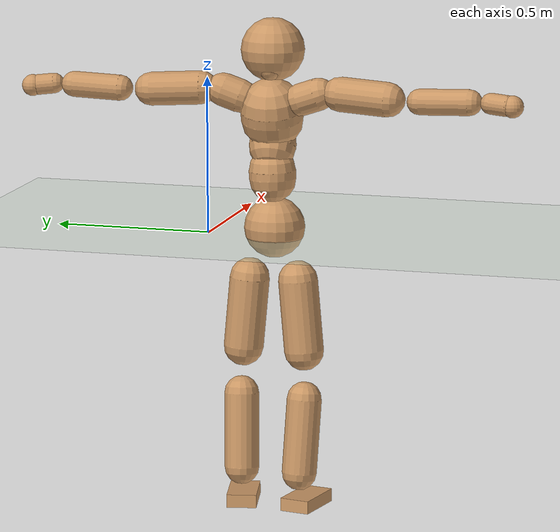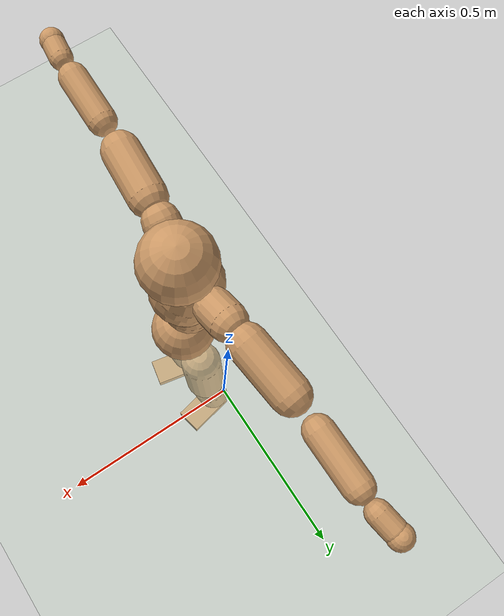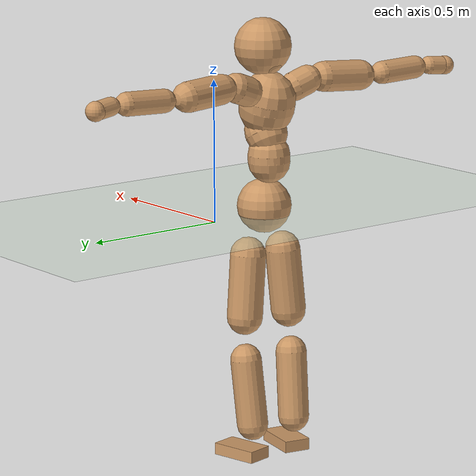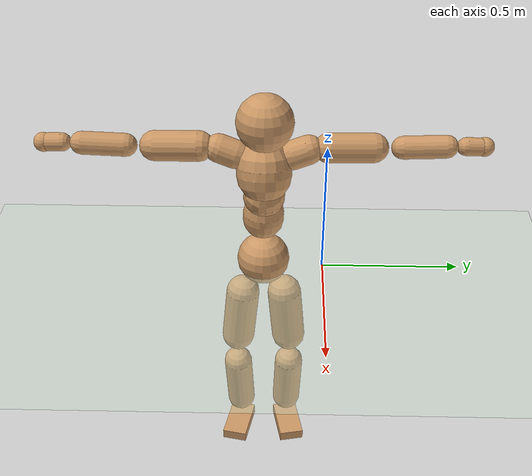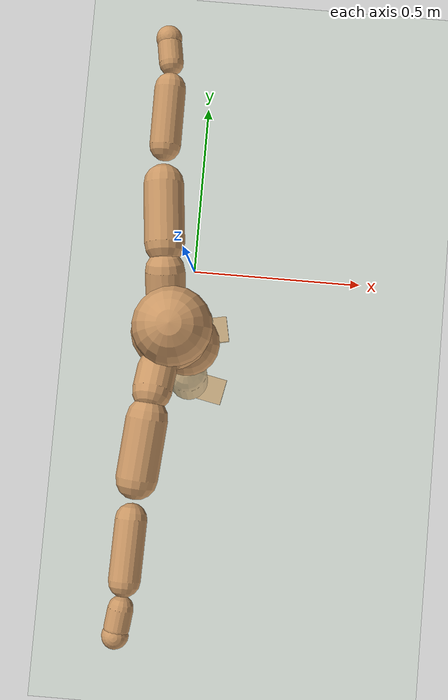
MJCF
<mujoco model="humanoid">
  <compiler coordinate="local"/>
  <default>
    <joint damping="0.0" armature="0.01" stiffness="0.0" limited="true"/>
    <geom conaffinity="1" condim="3" contype="7" margin="0.001" rgba="0.8 0.6 .4 1"/>
  </default>
  <asset>
    <texture type="skybox" builtin="gradient" rgb1=".4 .5 .6" rgb2="0 0 0" width="100" height="100"/>
    <texture builtin="flat" height="1278" mark="cross" markrgb="1 1 1" name="texgeom" random="0.01" rgb1="0.8 0.6 0.4" rgb2="0.8 0.6 0.4" type="cube" width="127"/>
    <texture builtin="checker" height="100" name="texplane" rgb1="0 0 0" rgb2="0.8 0.8 0.8" type="2d" width="100"/>
    <material name="MatPlane" reflectance="0.5" shininess="1" specular="1" texrepeat="60 60" texture="texplane"/>
    <material name="geom" texture="texgeom" texuniform="true"/>
  </asset>
  <worldbody>
    <light cutoff="100" diffuse="1 1 1" dir="-0 0 -1.3" directional="true" exponent="1" pos="0 0 1.3" specular=".1 .1 .1"/>
    <geom conaffinity="1" condim="3" name="floor" pos="0 0 0" rgba="0.8 0.9 0.8 1" size="100 100 .2" type="plane" material="MatPlane"/>
    <body name="Pelvis" pos="-0.0007 -0.2198 0.0309">
      <freejoint name="Pelvis"/>
      <geom type="sphere" contype="1" conaffinity="1" density="500" size="0.0966" pos="0.0000 0.0000 0.0000" name="Pelvis"/>
      <body name="L_Hip" pos="-0.0071 0.0734 -0.0919">
        <joint name="L_Hip_x" type="hinge" pos="0 0 0" axis="1 0 0" stiffness="800" damping="80" armature="0.02" range="-180.0000 180.0000"/>
        <joint name="L_Hip_y" type="hinge" pos="0 0 0" axis="0 1 0" stiffness="800" damping="80" armature="0.02" range="-180.0000 180.0000"/>
        <joint name="L_Hip_z" type="hinge" pos="0 0 0" axis="0 0 1" stiffness="800" damping="80" armature="0.02" range="-180.0000 180.0000"/>
        <geom type="capsule" contype="1" conaffinity="1" density="500" fromto="-0.0014 0.0063 -0.0740 -0.0057 0.0252 -0.2961" size="0.0637" name="L_Hip"/>
        <body name="L_Knee" pos="-0.0071 0.0315 -0.3702">
          <joint name="L_Knee_x" type="hinge" pos="0 0 0" axis="1 0 0" stiffness="800" damping="80" armature="0.02" range="-180.0000 180.0000"/>
          <joint name="L_Knee_y" type="hinge" pos="0 0 0" axis="0 1 0" stiffness="800" damping="80" armature="0.02" range="-180.0000 180.0000"/>
          <joint name="L_Knee_z" type="hinge" pos="0 0 0" axis="0 0 1" stiffness="800" damping="80" armature="0.02" range="-180.0000 180.0000"/>
          <geom type="capsule" contype="1" conaffinity="1" density="500" fromto="-0.0091 -0.0026 -0.0789 -0.0363 -0.0105 -0.3155" size="0.0554" name="L_Knee"/>
          <body name="L_Ankle" pos="-0.0454 -0.0132 -0.3944">
            <joint name="L_Ankle_x" type="hinge" pos="0 0 0" axis="1 0 0" stiffness="800" damping="80" armature="0.02" range="-180.0000 180.0000"/>
            <joint name="L_Ankle_y" type="hinge" pos="0 0 0" axis="0 1 0" stiffness="800" damping="80" armature="0.02" range="-180.0000 180.0000"/>
            <joint name="L_Ankle_z" type="hinge" pos="0 0 0" axis="0 0 1" stiffness="800" damping="80" armature="0.02" range="-180.0000 180.0000"/>
            <geom type="box" contype="1" conaffinity="1" density="500" pos="0.0597 0.0120 -0.0278" size="0.0858 0.0476 0.021" quat="0.9950 0.0000 0.0000 0.0994" name="L_Ankle"/>
            <body name="L_Toe" pos="0.1193 0.0241 -0.0557">
              <joint name="L_Toe_x" type="hinge" pos="0 0 0" axis="1 0 0" stiffness="500" damping="50" armature="0.02" range="-180.0000 180.0000"/>
              <joint name="L_Toe_y" type="hinge" pos="0 0 0" axis="0 1 0" stiffness="500" damping="50" armature="0.02" range="-180.0000 180.0000"/>
              <joint name="L_Toe_z" type="hinge" pos="0 0 0" axis="0 0 1" stiffness="500" damping="50" armature="0.02" range="-180.0000 180.0000"/>
              <geom type="box" contype="1" conaffinity="1" density="500" pos="0.0000 0.0000 0.0268" size="0.001 0.0024 0.001" quat="0.9944 0.0000 0.0000 0.1057" name="L_Toe"/>
            </body>
          </body>
        </body>
      </body>
      <body name="R_Hip" pos="-0.0042 -0.0712 -0.0911">
        <joint name="R_Hip_x" type="hinge" pos="0 0 0" axis="1 0 0" stiffness="800" damping="80" armature="0.02" range="-180.0000 180.0000"/>
        <joint name="R_Hip_y" type="hinge" pos="0 0 0" axis="0 1 0" stiffness="800" damping="80" armature="0.02" range="-180.0000 180.0000"/>
        <joint name="R_Hip_z" type="hinge" pos="0 0 0" axis="0 0 1" stiffness="800" damping="80" armature="0.02" range="-180.0000 180.0000"/>
        <geom type="capsule" contype="1" conaffinity="1" density="500" fromto="-0.0021 -0.0073 -0.0755 -0.0084 -0.0291 -0.3020" size="0.0629" name="R_Hip"/>
        <body name="R_Knee" pos="-0.0104 -0.0364 -0.3774">
          <joint name="R_Knee_x" type="hinge" pos="0 0 0" axis="1 0 0" stiffness="800" damping="80" armature="0.02" range="-180.0000 180.0000"/>
          <joint name="R_Knee_y" type="hinge" pos="0 0 0" axis="0 1 0" stiffness="800" damping="80" armature="0.02" range="-180.0000 180.0000"/>
          <joint name="R_Knee_z" type="hinge" pos="0 0 0" axis="0 0 1" stiffness="800" damping="80" armature="0.02" range="-180.0000 180.0000"/>
          <geom type="capsule" contype="1" conaffinity="1" density="500" fromto="-0.0088 0.0031 -0.0789 -0.0352 0.0123 -0.3157" size="0.0554" name="R_Knee"/>
          <body name="R_Ankle" pos="-0.0441 0.0154 -0.3946">
            <joint name="R_Ankle_x" type="hinge" pos="0 0 0" axis="1 0 0" stiffness="800" damping="80" armature="0.02" range="-180.0000 180.0000"/>
            <joint name="R_Ankle_y" type="hinge" pos="0 0 0" axis="0 1 0" stiffness="800" damping="80" armature="0.02" range="-180.0000 180.0000"/>
            <joint name="R_Ankle_z" type="hinge" pos="0 0 0" axis="0 0 1" stiffness="800" damping="80" armature="0.02" range="-180.0000 180.0000"/>
            <geom type="box" contype="1" conaffinity="1" density="500" pos="0.0617 -0.0124 -0.0239" size="0.0867 0.0483 0.0208" quat="0.9951 0.0000 0.0000 -0.0993" name="R_Ankle"/>
            <body name="R_Toe" pos="0.1234 -0.0249 -0.0477">
              <joint name="R_Toe_x" type="hinge" pos="0 0 0" axis="1 0 0" stiffness="500" damping="50" armature="0.02" range="-180.0000 180.0000"/>
              <joint name="R_Toe_y" type="hinge" pos="0 0 0" axis="0 1 0" stiffness="500" damping="50" armature="0.02" range="-180.0000 180.0000"/>
              <joint name="R_Toe_z" type="hinge" pos="0 0 0" axis="0 0 1" stiffness="500" damping="50" armature="0.02" range="-180.0000 180.0000"/>
              <geom type="box" contype="1" conaffinity="1" density="500" pos="0.0000 0.0000 0.0250" size="0.001 0.0024 0.0011" quat="0.9959 0.0000 0.0000 -0.0901" name="R_Toe"/>
            </body>
          </body>
        </body>
      </body>
      <body name="Torso" pos="-0.0262 -0.0025 0.1081">
        <joint name="Torso_x" type="hinge" pos="0 0 0" axis="1 0 0" stiffness="1000" damping="100" armature="0.02" range="-180.0000 180.0000"/>
        <joint name="Torso_y" type="hinge" pos="0 0 0" axis="0 1 0" stiffness="1000" damping="100" armature="0.02" range="-180.0000 180.0000"/>
        <joint name="Torso_z" type="hinge" pos="0 0 0" axis="0 0 1" stiffness="1000" damping="100" armature="0.02" range="-180.0000 180.0000"/>
        <geom type="capsule" contype="1" conaffinity="1" density="500" fromto="-0.0006 0.0025 0.0787 -0.0004 0.0017 0.0524" size="0.0746" name="Torso"/>
        <body name="Spine" pos="-0.001 0.0041 0.1311">
          <joint name="Spine_x" type="hinge" pos="0 0 0" axis="1 0 0" stiffness="1000" damping="100" armature="0.02" range="-180.0000 180.0000"/>
          <joint name="Spine_y" type="hinge" pos="0 0 0" axis="0 1 0" stiffness="1000" damping="100" armature="0.02" range="-180.0000 180.0000"/>
          <joint name="Spine_z" type="hinge" pos="0 0 0" axis="0 0 1" stiffness="1000" damping="100" armature="0.02" range="-180.0000 180.0000"/>
          <geom type="capsule" contype="1" conaffinity="1" density="500" fromto="0.0168 0.0011 0.0307 0.0112 0.0007 0.0205" size="0.0746" name="Spine"/>
          <body name="Chest" pos="0.028 0.0018 0.0512">
            <joint name="Chest_x" type="hinge" pos="0 0 0" axis="1 0 0" stiffness="1000" damping="100" armature="0.02" range="-180.0000 180.0000"/>
            <joint name="Chest_y" type="hinge" pos="0 0 0" axis="0 1 0" stiffness="1000" damping="100" armature="0.02" range="-180.0000 180.0000"/>
            <joint name="Chest_z" type="hinge" pos="0 0 0" axis="0 0 1" stiffness="1000" damping="100" armature="0.02" range="-180.0000 180.0000"/>
            <geom type="capsule" contype="1" conaffinity="1" density="500" fromto="-0.0256 -0.0008 0.0915 -0.0170 -0.0005 0.0610" size="0.0986" name="Chest"/>
            <body name="Neck" pos="-0.0505 -0.0017 0.2144">
              <joint name="Neck_x" type="hinge" pos="0 0 0" axis="1 0 0" stiffness="500" damping="50" armature="0.02" range="-180.0000 180.0000"/>
              <joint name="Neck_y" type="hinge" pos="0 0 0" axis="0 1 0" stiffness="500" damping="50" armature="0.02" range="-180.0000 180.0000"/>
              <joint name="Neck_z" type="hinge" pos="0 0 0" axis="0 0 1" stiffness="500" damping="50" armature="0.02" range="-180.0000 180.0000"/>
              <geom type="capsule" contype="1" conaffinity="1" density="500" fromto="0.0098 0.0008 0.0122 0.0393 0.0032 0.0486" size="0.0429" name="Neck"/>
              <body name="Head" pos="0.0491 0.0041 0.0608">
                <joint name="Head_x" type="hinge" pos="0 0 0" axis="1 0 0" stiffness="500" damping="50" armature="0.02" range="-180.0000 180.0000"/>
                <joint name="Head_y" type="hinge" pos="0 0 0" axis="0 1 0" stiffness="500" damping="50" armature="0.02" range="-180.0000 180.0000"/>
                <joint name="Head_z" type="hinge" pos="0 0 0" axis="0 0 1" stiffness="500" damping="50" armature="0.02" range="-180.0000 180.0000"/>
                <geom type="sphere" contype="1" conaffinity="1" density="500" size="0.1004" pos="0.0000 0.0000 0.0000" name="Head"/>
              </body>
            </body>
            <body name="L_Thorax" pos="-0.0363 0.0794 0.1228">
              <joint name="L_Thorax_x" type="hinge" pos="0 0 0" axis="1 0 0" stiffness="500" damping="50" armature="0.02" range="-180.0000 180.0000"/>
              <joint name="L_Thorax_y" type="hinge" pos="0 0 0" axis="0 1 0" stiffness="500" damping="50" armature="0.02" range="-180.0000 180.0000"/>
              <joint name="L_Thorax_z" type="hinge" pos="0 0 0" axis="0 0 1" stiffness="500" damping="50" armature="0.02" range="-180.0000 180.0000"/>
              <geom type="capsule" contype="1" conaffinity="1" density="500" fromto="-0.0016 0.0182 0.0065 -0.0065 0.0728 0.0260" size="0.0526" name="L_Thorax"/>
              <body name="L_Shoulder" pos="-0.0081 0.091 0.0325">
                <joint name="L_Shoulder_x" type="hinge" pos="0 0 0" axis="1 0 0" stiffness="500" damping="50" armature="0.02" range="-720.0000 720.0000"/>
                <joint name="L_Shoulder_y" type="hinge" pos="0 0 0" axis="0 1 0" stiffness="500" damping="50" armature="0.02" range="-720.0000 720.0000"/>
                <joint name="L_Shoulder_z" type="hinge" pos="0 0 0" axis="0 0 1" stiffness="500" damping="50" armature="0.02" range="-720.0000 720.0000"/>
                <geom type="capsule" contype="1" conaffinity="1" density="500" fromto="-0.0057 0.0523 -0.0026 -0.0228 0.2092 -0.0105" size="0.053" name="L_Shoulder"/>
                <body name="L_Elbow" pos="-0.0285 0.2615 -0.0131">
                  <joint name="L_Elbow_x" type="hinge" pos="0 0 0" axis="1 0 0" stiffness="500" damping="50" armature="0.02" range="-720.0000 720.0000"/>
                  <joint name="L_Elbow_y" type="hinge" pos="0 0 0" axis="0 1 0" stiffness="500" damping="50" armature="0.02" range="-720.0000 720.0000"/>
                  <joint name="L_Elbow_z" type="hinge" pos="0 0 0" axis="0 0 1" stiffness="500" damping="50" armature="0.02" range="-720.0000 720.0000"/>
                  <geom type="capsule" contype="1" conaffinity="1" density="500" fromto="0.0001 0.0502 0.0019 0.0002 0.2010 0.0076" size="0.041" name="L_Elbow"/>
                  <body name="L_Wrist" pos="0.0003 0.2512 0.0095">
                    <joint name="L_Wrist_x" type="hinge" pos="0 0 0" axis="1 0 0" stiffness="300" damping="30" armature="0.02" range="-180.0000 180.0000"/>
                    <joint name="L_Wrist_y" type="hinge" pos="0 0 0" axis="0 1 0" stiffness="300" damping="30" armature="0.02" range="-180.0000 180.0000"/>
                    <joint name="L_Wrist_z" type="hinge" pos="0 0 0" axis="0 0 1" stiffness="300" damping="30" armature="0.02" range="-180.0000 180.0000"/>
                    <geom type="capsule" contype="1" conaffinity="1" density="500" fromto="-0.0029 0.0170 -0.0018 -0.0117 0.0680 -0.0073" size="0.0321" name="L_Wrist"/>
                    <body name="L_Hand" pos="-0.0147 0.085 -0.0091">
                      <joint name="L_Hand_x" type="hinge" pos="0 0 0" axis="1 0 0" stiffness="300" damping="30" armature="0.02" range="-180.0000 180.0000"/>
                      <joint name="L_Hand_y" type="hinge" pos="0 0 0" axis="0 1 0" stiffness="300" damping="30" armature="0.02" range="-180.0000 180.0000"/>
                      <joint name="L_Hand_z" type="hinge" pos="0 0 0" axis="0 0 1" stiffness="300" damping="30" armature="0.02" range="-180.0000 180.0000"/>
                      <geom type="sphere" contype="1" conaffinity="1" density="500" size="0.0341" pos="0.0000 0.0000 0.0000" name="L_Hand"/>
                    </body>
                  </body>
                </body>
              </body>
            </body>
            <body name="R_Thorax" pos="-0.0411 -0.0815 0.1201">
              <joint name="R_Thorax_x" type="hinge" pos="0 0 0" axis="1 0 0" stiffness="500" damping="50" armature="0.02" range="-180.0000 180.0000"/>
              <joint name="R_Thorax_y" type="hinge" pos="0 0 0" axis="0 1 0" stiffness="500" damping="50" armature="0.02" range="-180.0000 180.0000"/>
              <joint name="R_Thorax_z" type="hinge" pos="0 0 0" axis="0 0 1" stiffness="500" damping="50" armature="0.02" range="-180.0000 180.0000"/>
              <geom type="capsule" contype="1" conaffinity="1" density="500" fromto="-0.0019 -0.0192 0.0069 -0.0076 -0.0769 0.0274" size="0.0516" name="R_Thorax"/>
              <body name="R_Shoulder" pos="-0.0095 -0.0961 0.0343">
                <joint name="R_Shoulder_x" type="hinge" pos="0 0 0" axis="1 0 0" stiffness="500" damping="50" armature="0.02" range="-720.0000 720.0000"/>
                <joint name="R_Shoulder_y" type="hinge" pos="0 0 0" axis="0 1 0" stiffness="500" damping="50" armature="0.02" range="-720.0000 720.0000"/>
                <joint name="R_Shoulder_z" type="hinge" pos="0 0 0" axis="0 0 1" stiffness="500" damping="50" armature="0.02" range="-720.0000 720.0000"/>
                <geom type="capsule" contype="1" conaffinity="1" density="500" fromto="-0.0043 -0.0516 -0.0029 -0.0174 -0.2065 -0.0114" size="0.0545" name="R_Shoulder"/>
                <body name="R_Elbow" pos="-0.0217 -0.2581 -0.0143">
                  <joint name="R_Elbow_x" type="hinge" pos="0 0 0" axis="1 0 0" stiffness="500" damping="50" armature="0.02" range="-720.0000 720.0000"/>
                  <joint name="R_Elbow_y" type="hinge" pos="0 0 0" axis="0 1 0" stiffness="500" damping="50" armature="0.02" range="-720.0000 720.0000"/>
                  <joint name="R_Elbow_z" type="hinge" pos="0 0 0" axis="0 0 1" stiffness="500" damping="50" armature="0.02" range="-720.0000 720.0000"/>
                  <geom type="capsule" contype="1" conaffinity="1" density="500" fromto="-0.0008 -0.0516 0.0017 -0.0033 -0.2064 0.0067" size="0.0412" name="R_Elbow"/>
                  <body name="R_Wrist" pos="-0.0041 -0.258 0.0084">
                    <joint name="R_Wrist_x" type="hinge" pos="0 0 0" axis="1 0 0" stiffness="300" damping="30" armature="0.02" range="-180.0000 180.0000"/>
                    <joint name="R_Wrist_y" type="hinge" pos="0 0 0" axis="0 1 0" stiffness="300" damping="30" armature="0.02" range="-180.0000 180.0000"/>
                    <joint name="R_Wrist_z" type="hinge" pos="0 0 0" axis="0 0 1" stiffness="300" damping="30" armature="0.02" range="-180.0000 180.0000"/>
                    <geom type="capsule" contype="1" conaffinity="1" density="500" fromto="-0.0022 -0.0172 -0.0014 -0.0087 -0.0690 -0.0055" size="0.033" name="R_Wrist"/>
                    <body name="R_Hand" pos="-0.0109 -0.0862 -0.0069">
                      <joint name="R_Hand_x" type="hinge" pos="0 0 0" axis="1 0 0" stiffness="300" damping="30" armature="0.02" range="-180.0000 180.0000"/>
                      <joint name="R_Hand_y" type="hinge" pos="0 0 0" axis="0 1 0" stiffness="300" damping="30" armature="0.02" range="-180.0000 180.0000"/>
                      <joint name="R_Hand_z" type="hinge" pos="0 0 0" axis="0 0 1" stiffness="300" damping="30" armature="0.02" range="-180.0000 180.0000"/>
                      <geom type="sphere" contype="1" conaffinity="1" density="500" size="0.0346" pos="0.0000 0.0000 0.0000" name="R_Hand"/>
                    </body>
                  </body>
                </body>
              </body>
            </body>
          </body>
        </body>
      </body>
    </body>
  </worldbody>
  <actuator>
    <motor name="L_Hip_x" joint="L_Hip_x" gear="500"/>
    <motor name="L_Hip_y" joint="L_Hip_y" gear="500"/>
    <motor name="L_Hip_z" joint="L_Hip_z" gear="500"/>
    <motor name="L_Knee_x" joint="L_Knee_x" gear="500"/>
    <motor name="L_Knee_y" joint="L_Knee_y" gear="500"/>
    <motor name="L_Knee_z" joint="L_Knee_z" gear="500"/>
    <motor name="L_Ankle_x" joint="L_Ankle_x" gear="500"/>
    <motor name="L_Ankle_y" joint="L_Ankle_y" gear="500"/>
    <motor name="L_Ankle_z" joint="L_Ankle_z" gear="500"/>
    <motor name="L_Toe_x" joint="L_Toe_x" gear="500"/>
    <motor name="L_Toe_y" joint="L_Toe_y" gear="500"/>
    <motor name="L_Toe_z" joint="L_Toe_z" gear="500"/>
    <motor name="R_Hip_x" joint="R_Hip_x" gear="500"/>
    <motor name="R_Hip_y" joint="R_Hip_y" gear="500"/>
    <motor name="R_Hip_z" joint="R_Hip_z" gear="500"/>
    <motor name="R_Knee_x" joint="R_Knee_x" gear="500"/>
    <motor name="R_Knee_y" joint="R_Knee_y" gear="500"/>
    <motor name="R_Knee_z" joint="R_Knee_z" gear="500"/>
    <motor name="R_Ankle_x" joint="R_Ankle_x" gear="500"/>
    <motor name="R_Ankle_y" joint="R_Ankle_y" gear="500"/>
    <motor name="R_Ankle_z" joint="R_Ankle_z" gear="500"/>
    <motor name="R_Toe_x" joint="R_Toe_x" gear="500"/>
    <motor name="R_Toe_y" joint="R_Toe_y" gear="500"/>
    <motor name="R_Toe_z" joint="R_Toe_z" gear="500"/>
    <motor name="Torso_x" joint="Torso_x" gear="500"/>
    <motor name="Torso_y" joint="Torso_y" gear="500"/>
    <motor name="Torso_z" joint="Torso_z" gear="500"/>
    <motor name="Spine_x" joint="Spine_x" gear="500"/>
    <motor name="Spine_y" joint="Spine_y" gear="500"/>
    <motor name="Spine_z" joint="Spine_z" gear="500"/>
    <motor name="Chest_x" joint="Chest_x" gear="500"/>
    <motor name="Chest_y" joint="Chest_y" gear="500"/>
    <motor name="Chest_z" joint="Chest_z" gear="500"/>
    <motor name="Neck_x" joint="Neck_x" gear="500"/>
    <motor name="Neck_y" joint="Neck_y" gear="500"/>
    <motor name="Neck_z" joint="Neck_z" gear="500"/>
    <motor name="Head_x" joint="Head_x" gear="500"/>
    <motor name="Head_y" joint="Head_y" gear="500"/>
    <motor name="Head_z" joint="Head_z" gear="500"/>
    <motor name="L_Thorax_x" joint="L_Thorax_x" gear="500"/>
    <motor name="L_Thorax_y" joint="L_Thorax_y" gear="500"/>
    <motor name="L_Thorax_z" joint="L_Thorax_z" gear="500"/>
    <motor name="L_Shoulder_x" joint="L_Shoulder_x" gear="500"/>
    <motor name="L_Shoulder_y" joint="L_Shoulder_y" gear="500"/>
    <motor name="L_Shoulder_z" joint="L_Shoulder_z" gear="500"/>
    <motor name="L_Elbow_x" joint="L_Elbow_x" gear="500"/>
    <motor name="L_Elbow_y" joint="L_Elbow_y" gear="500"/>
    <motor name="L_Elbow_z" joint="L_Elbow_z" gear="500"/>
    <motor name="L_Wrist_x" joint="L_Wrist_x" gear="500"/>
    <motor name="L_Wrist_y" joint="L_Wrist_y" gear="500"/>
    <motor name="L_Wrist_z" joint="L_Wrist_z" gear="500"/>
    <motor name="L_Hand_x" joint="L_Hand_x" gear="500"/>
    <motor name="L_Hand_y" joint="L_Hand_y" gear="500"/>
    <motor name="L_Hand_z" joint="L_Hand_z" gear="500"/>
    <motor name="R_Thorax_x" joint="R_Thorax_x" gear="500"/>
    <motor name="R_Thorax_y" joint="R_Thorax_y" gear="500"/>
    <motor name="R_Thorax_z" joint="R_Thorax_z" gear="500"/>
    <motor name="R_Shoulder_x" joint="R_Shoulder_x" gear="500"/>
    <motor name="R_Shoulder_y" joint="R_Shoulder_y" gear="500"/>
    <motor name="R_Shoulder_z" joint="R_Shoulder_z" gear="500"/>
    <motor name="R_Elbow_x" joint="R_Elbow_x" gear="500"/>
    <motor name="R_Elbow_y" joint="R_Elbow_y" gear="500"/>
    <motor name="R_Elbow_z" joint="R_Elbow_z" gear="500"/>
    <motor name="R_Wrist_x" joint="R_Wrist_x" gear="500"/>
    <motor name="R_Wrist_y" joint="R_Wrist_y" gear="500"/>
    <motor name="R_Wrist_z" joint="R_Wrist_z" gear="500"/>
    <motor name="R_Hand_x" joint="R_Hand_x" gear="500"/>
    <motor name="R_Hand_y" joint="R_Hand_y" gear="500"/>
    <motor name="R_Hand_z" joint="R_Hand_z" gear="500"/>
  </actuator>
  <contact>
    <exclude body1="Torso" body2="Chest"/>
    <exclude body1="Head" body2="Chest"/>
    <exclude body1="R_Knee" body2="R_Toe"/>
    <exclude body1="R_Knee" body2="L_Ankle"/>
    <exclude body1="R_Knee" body2="L_Toe"/>
    <exclude body1="L_Knee" body2="L_Toe"/>
    <exclude body1="L_Knee" body2="R_Ankle"/>
    <exclude body1="L_Knee" body2="R_Toe"/>
    <exclude body1="L_Shoulder" body2="Chest"/>
    <exclude body1="R_Shoulder" body2="Chest"/>
  </contact>
  <sensor/>
  <size njmax="700" nconmax="700"/>
</mujoco>
